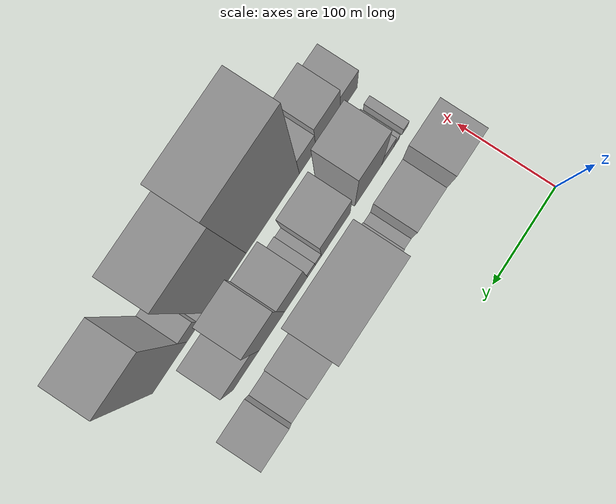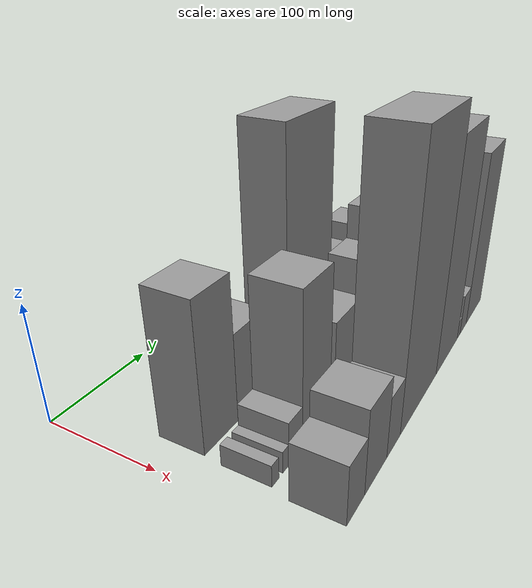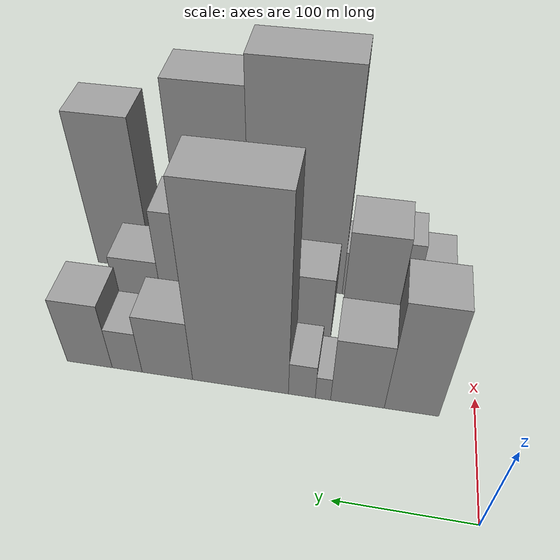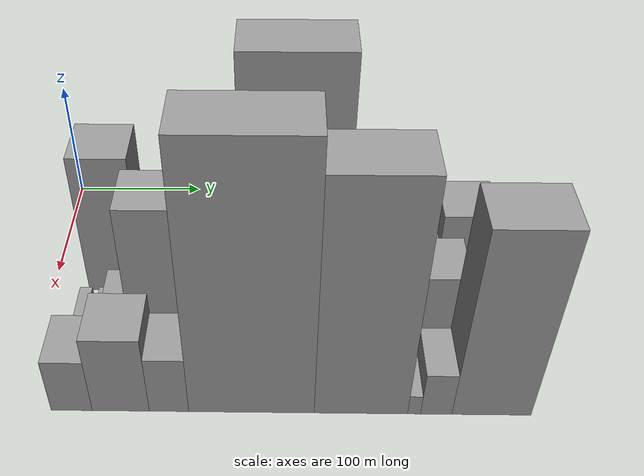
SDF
<sdf version="1.6">
 <world name="default">
  <model name="building_17">
   <static>1</static>
   <pose>100.0000 47.7928 0 0.000000 0.000000 0.000000</pose>
   <link name="link">
    <pose>0 0 61.50 0 0 0</pose>
    <collision name="collision"><geometry><box><size>40.0000 40.9139 123.0000</size></box></geometry></collision>
    <visual name="visual">
     <cast_shadows>0</cast_shadows>
     <geometry><box><size>40.0000 40.9139 123.0000</size></box></geometry>
     <material>
      <script>
       <uri>model://grey_wall/materials/scripts</uri>
       <uri>model://grey_wall/materials/textures</uri>
       <name>vrc/grey_wall</name>
      </script>
     </material>
    </visual>
   </link>
  </model>
  <model name="building_18">
   <static>1</static>
   <pose>100.0000 88.7634 0 0.000000 0.000000 0.000000</pose>
   <link name="link">
    <pose>0 0 37.50 0 0 0</pose>
    <collision name="collision"><geometry><box><size>40.0000 41.0273 75.0000</size></box></geometry></collision>
    <visual name="visual">
     <cast_shadows>0</cast_shadows>
     <geometry><box><size>40.0000 41.0273 75.0000</size></box></geometry>
     <material>
      <script>
       <uri>model://grey_wall/materials/scripts</uri>
       <uri>model://grey_wall/materials/textures</uri>
       <name>vrc/grey_wall</name>
      </script>
     </material>
    </visual>
   </link>
  </model>
  <model name="building_19">
   <static>1</static>
   <pose>100.0000 115.1914 0 0.000000 0.000000 0.000000</pose>
   <link name="link">
    <pose>0 0 13.50 0 0 0</pose>
    <collision name="collision"><geometry><box><size>40.0000 11.8286 27.0000</size></box></geometry></collision>
    <visual name="visual">
     <cast_shadows>0</cast_shadows>
     <geometry><box><size>40.0000 11.8286 27.0000</size></box></geometry>
     <material>
      <script>
       <uri>model://grey_wall/materials/scripts</uri>
       <uri>model://grey_wall/materials/textures</uri>
       <name>vrc/grey_wall</name>
      </script>
     </material>
    </visual>
   </link>
  </model>
  <model name="building_20">
   <static>1</static>
   <pose>100.0000 131.5545 0 0.000000 0.000000 0.000000</pose>
   <link name="link">
    <pose>0 0 19.50 0 0 0</pose>
    <collision name="collision"><geometry><box><size>40.0000 20.8976 39.0000</size></box></geometry></collision>
    <visual name="visual">
     <cast_shadows>0</cast_shadows>
     <geometry><box><size>40.0000 20.8976 39.0000</size></box></geometry>
     <material>
      <script>
       <uri>model://grey_wall/materials/scripts</uri>
       <uri>model://grey_wall/materials/textures</uri>
       <name>vrc/grey_wall</name>
      </script>
     </material>
    </visual>
   </link>
  </model>
  <model name="building_21">
   <static>1</static>
   <pose>100.0000 180.0972 0 0.000000 0.000000 0.000000</pose>
   <link name="link">
    <pose>0 0 102.00 0 0 0</pose>
    <collision name="collision"><geometry><box><size>40.0000 76.1879 204.0000</size></box></geometry></collision>
    <visual name="visual">
     <cast_shadows>0</cast_shadows>
     <geometry><box><size>40.0000 76.1879 204.0000</size></box></geometry>
     <material>
      <script>
       <uri>model://grey_wall/materials/scripts</uri>
       <uri>model://grey_wall/materials/textures</uri>
       <name>vrc/grey_wall</name>
      </script>
     </material>
    </visual>
   </link>
  </model>
  <model name="building_22">
   <static>1</static>
   <pose>100.0000 238.7869 0 0.000000 0.000000 0.000000</pose>
   <link name="link">
    <pose>0 0 34.50 0 0 0</pose>
    <collision name="collision"><geometry><box><size>40.0000 41.1914 69.0000</size></box></geometry></collision>
    <visual name="visual">
     <cast_shadows>0</cast_shadows>
     <geometry><box><size>40.0000 41.1914 69.0000</size></box></geometry>
     <material>
      <script>
       <uri>model://grey_wall/materials/scripts</uri>
       <uri>model://grey_wall/materials/textures</uri>
       <name>vrc/grey_wall</name>
      </script>
     </material>
    </visual>
   </link>
  </model>
  <model name="building_23">
   <static>1</static>
   <pose>100.0000 271.7643 0 0.000000 0.000000 0.000000</pose>
   <link name="link">
    <pose>0 0 24.00 0 0 0</pose>
    <collision name="collision"><geometry><box><size>40.0000 24.7636 48.0000</size></box></geometry></collision>
    <visual name="visual">
     <cast_shadows>0</cast_shadows>
     <geometry><box><size>40.0000 24.7636 48.0000</size></box></geometry>
     <material>
      <script>
       <uri>model://grey_wall/materials/scripts</uri>
       <uri>model://grey_wall/materials/textures</uri>
       <name>vrc/grey_wall</name>
      </script>
     </material>
    </visual>
   </link>
  </model>
  <model name="building_24">
   <static>1</static>
   <pose>100.0000 303.0075 0 0.000000 0.000000 0.000000</pose>
   <link name="link">
    <pose>0 0 37.50 0 0 0</pose>
    <collision name="collision"><geometry><box><size>40.0000 37.7227 75.0000</size></box></geometry></collision>
    <visual name="visual">
     <cast_shadows>0</cast_shadows>
     <geometry><box><size>40.0000 37.7227 75.0000</size></box></geometry>
     <material>
      <script>
       <uri>model://grey_wall/materials/scripts</uri>
       <uri>model://grey_wall/materials/textures</uri>
       <name>vrc/grey_wall</name>
      </script>
     </material>
    </visual>
   </link>
  </model>
  <model name="building_54">
   <static>1</static>
   <pose>155.0000 30.0182 0 0.000000 0.000000 0.000000</pose>
   <link name="link">
    <pose>0 0 9.00 0 0 0</pose>
    <collision name="collision"><geometry><box><size>40.0000 8.9610 18.0000</size></box></geometry></collision>
    <visual name="visual">
     <cast_shadows>0</cast_shadows>
     <geometry><box><size>40.0000 8.9610 18.0000</size></box></geometry>
     <material>
      <script>
       <uri>model://grey_wall/materials/scripts</uri>
       <uri>model://grey_wall/materials/textures</uri>
       <name>vrc/grey_wall</name>
      </script>
     </material>
    </visual>
   </link>
  </model>
  <model name="building_55">
   <static>1</static>
   <pose>155.0000 43.6101 0 0.000000 0.000000 0.000000</pose>
   <link name="link">
    <pose>0 0 9.00 0 0 0</pose>
    <collision name="collision"><geometry><box><size>40.0000 8.2228 18.0000</size></box></geometry></collision>
    <visual name="visual">
     <cast_shadows>0</cast_shadows>
     <geometry><box><size>40.0000 8.2228 18.0000</size></box></geometry>
     <material>
      <script>
       <uri>model://grey_wall/materials/scripts</uri>
       <uri>model://grey_wall/materials/textures</uri>
       <name>vrc/grey_wall</name>
      </script>
     </material>
    </visual>
   </link>
  </model>
  <model name="building_56">
   <static>1</static>
   <pose>155.0000 57.2296 0 0.000000 0.000000 0.000000</pose>
   <link name="link">
    <pose>0 0 18.00 0 0 0</pose>
    <collision name="collision"><geometry><box><size>40.0000 19.0161 36.0000</size></box></geometry></collision>
    <visual name="visual">
     <cast_shadows>0</cast_shadows>
     <geometry><box><size>40.0000 19.0161 36.0000</size></box></geometry>
     <material>
      <script>
       <uri>model://grey_wall/materials/scripts</uri>
       <uri>model://grey_wall/materials/textures</uri>
       <name>vrc/grey_wall</name>
      </script>
     </material>
    </visual>
   </link>
  </model>
  <model name="building_57">
   <static>1</static>
   <pose>155.0000 87.8246 0 0.000000 0.000000 0.000000</pose>
   <link name="link">
    <pose>0 0 63.00 0 0 0</pose>
    <collision name="collision"><geometry><box><size>40.0000 42.1740 126.0000</size></box></geometry></collision>
    <visual name="visual">
     <cast_shadows>0</cast_shadows>
     <geometry><box><size>40.0000 42.1740 126.0000</size></box></geometry>
     <material>
      <script>
       <uri>model://grey_wall/materials/scripts</uri>
       <uri>model://grey_wall/materials/textures</uri>
       <name>vrc/grey_wall</name>
      </script>
     </material>
    </visual>
   </link>
  </model>
  <model name="building_58">
   <static>1</static>
   <pose>155.0000 138.0495 0 0.000000 0.000000 0.000000</pose>
   <link name="link">
    <pose>0 0 37.50 0 0 0</pose>
    <collision name="collision"><geometry><box><size>40.0000 44.2757 75.0000</size></box></geometry></collision>
    <visual name="visual">
     <cast_shadows>0</cast_shadows>
     <geometry><box><size>40.0000 44.2757 75.0000</size></box></geometry>
     <material>
      <script>
       <uri>model://grey_wall/materials/scripts</uri>
       <uri>model://grey_wall/materials/textures</uri>
       <name>vrc/grey_wall</name>
      </script>
     </material>
    </visual>
   </link>
  </model>
  <model name="building_59">
   <static>1</static>
   <pose>155.0000 164.9444 0 0.000000 0.000000 0.000000</pose>
   <link name="link">
    <pose>0 0 10.50 0 0 0</pose>
    <collision name="collision"><geometry><box><size>40.0000 9.5140 21.0000</size></box></geometry></collision>
    <visual name="visual">
     <cast_shadows>0</cast_shadows>
     <geometry><box><size>40.0000 9.5140 21.0000</size></box></geometry>
     <material>
      <script>
       <uri>model://grey_wall/materials/scripts</uri>
       <uri>model://grey_wall/materials/textures</uri>
       <name>vrc/grey_wall</name>
      </script>
     </material>
    </visual>
   </link>
  </model>
  <model name="building_60">
   <static>1</static>
   <pose>155.0000 175.7145 0 0.000000 0.000000 0.000000</pose>
   <link name="link">
    <pose>0 0 13.50 0 0 0</pose>
    <collision name="collision"><geometry><box><size>40.0000 12.0264 27.0000</size></box></geometry></collision>
    <visual name="visual">
     <cast_shadows>0</cast_shadows>
     <geometry><box><size>40.0000 12.0264 27.0000</size></box></geometry>
     <material>
      <script>
       <uri>model://grey_wall/materials/scripts</uri>
       <uri>model://grey_wall/materials/textures</uri>
       <name>vrc/grey_wall</name>
      </script>
     </material>
    </visual>
   </link>
  </model>
  <model name="building_61">
   <static>1</static>
   <pose>155.0000 199.2698 0 0.000000 0.000000 0.000000</pose>
   <link name="link">
    <pose>0 0 46.50 0 0 0</pose>
    <collision name="collision"><geometry><box><size>40.0000 35.0842 93.0000</size></box></geometry></collision>
    <visual name="visual">
     <cast_shadows>0</cast_shadows>
     <geometry><box><size>40.0000 35.0842 93.0000</size></box></geometry>
     <material>
      <script>
       <uri>model://grey_wall/materials/scripts</uri>
       <uri>model://grey_wall/materials/textures</uri>
       <name>vrc/grey_wall</name>
      </script>
     </material>
    </visual>
   </link>
  </model>
  <model name="building_62">
   <static>1</static>
   <pose>155.0000 236.4280 0 0.000000 0.000000 0.000000</pose>
   <link name="link">
    <pose>0 0 61.50 0 0 0</pose>
    <collision name="collision"><geometry><box><size>40.0000 39.2322 123.0000</size></box></geometry></collision>
    <visual name="visual">
     <cast_shadows>0</cast_shadows>
     <geometry><box><size>40.0000 39.2322 123.0000</size></box></geometry>
     <material>
      <script>
       <uri>model://grey_wall/materials/scripts</uri>
       <uri>model://grey_wall/materials/textures</uri>
       <name>vrc/grey_wall</name>
      </script>
     </material>
    </visual>
   </link>
  </model>
  <model name="building_63">
   <static>1</static>
   <pose>155.0000 275.9085 0 0.000000 0.000000 0.000000</pose>
   <link name="link">
    <pose>0 0 34.50 0 0 0</pose>
    <collision name="collision"><geometry><box><size>40.0000 39.7288 69.0000</size></box></geometry></collision>
    <visual name="visual">
     <cast_shadows>0</cast_shadows>
     <geometry><box><size>40.0000 39.7288 69.0000</size></box></geometry>
     <material>
      <script>
       <uri>model://grey_wall/materials/scripts</uri>
       <uri>model://grey_wall/materials/textures</uri>
       <name>vrc/grey_wall</name>
      </script>
     </material>
    </visual>
   </link>
  </model>
  <model name="building_89">
   <static>1</static>
   <pose>210.0000 34.6594 0 0.000000 0.000000 0.000000</pose>
   <link name="link">
    <pose>0 0 24.00 0 0 0</pose>
    <collision name="collision"><geometry><box><size>40.0000 26.9854 48.0000</size></box></geometry></collision>
    <visual name="visual">
     <cast_shadows>0</cast_shadows>
     <geometry><box><size>40.0000 26.9854 48.0000</size></box></geometry>
     <material>
      <script>
       <uri>model://grey_wall/materials/scripts</uri>
       <uri>model://grey_wall/materials/textures</uri>
       <name>vrc/grey_wall</name>
      </script>
     </material>
    </visual>
   </link>
  </model>
  <model name="building_90">
   <static>1</static>
   <pose>210.0000 66.8832 0 0.000000 0.000000 0.000000</pose>
   <link name="link">
    <pose>0 0 34.50 0 0 0</pose>
    <collision name="collision"><geometry><box><size>40.0000 37.4624 69.0000</size></box></geometry></collision>
    <visual name="visual">
     <cast_shadows>0</cast_shadows>
     <geometry><box><size>40.0000 37.4624 69.0000</size></box></geometry>
     <material>
      <script>
       <uri>model://grey_wall/materials/scripts</uri>
       <uri>model://grey_wall/materials/textures</uri>
       <name>vrc/grey_wall</name>
      </script>
     </material>
    </visual>
   </link>
  </model>
  <model name="building_91">
   <static>1</static>
   <pose>210.0000 98.5190 0 0.000000 0.000000 0.000000</pose>
   <link name="link">
    <pose>0 0 25.50 0 0 0</pose>
    <collision name="collision"><geometry><box><size>40.0000 25.8091 51.0000</size></box></geometry></collision>
    <visual name="visual">
     <cast_shadows>0</cast_shadows>
     <geometry><box><size>40.0000 25.8091 51.0000</size></box></geometry>
     <material>
      <script>
       <uri>model://grey_wall/materials/scripts</uri>
       <uri>model://grey_wall/materials/textures</uri>
       <name>vrc/grey_wall</name>
      </script>
     </material>
    </visual>
   </link>
  </model>
  <model name="building_92">
   <static>1</static>
   <pose>210.0000 152.4693 0 0.000000 0.000000 0.000000</pose>
   <link name="link">
    <pose>0 0 111.00 0 0 0</pose>
    <collision name="collision"><geometry><box><size>40.0000 82.0914 222.0000</size></box></geometry></collision>
    <visual name="visual">
     <cast_shadows>0</cast_shadows>
     <geometry><box><size>40.0000 82.0914 222.0000</size></box></geometry>
     <material>
      <script>
       <uri>model://grey_wall/materials/scripts</uri>
       <uri>model://grey_wall/materials/textures</uri>
       <name>vrc/grey_wall</name>
      </script>
     </material>
    </visual>
   </link>
  </model>
  <model name="building_93">
   <static>1</static>
   <pose>210.0000 223.9887 0 0.000000 0.000000 0.000000</pose>
   <link name="link">
    <pose>0 0 99.00 0 0 0</pose>
    <collision name="collision"><geometry><box><size>40.0000 60.9475 198.0000</size></box></geometry></collision>
    <visual name="visual">
     <cast_shadows>0</cast_shadows>
     <geometry><box><size>40.0000 60.9475 198.0000</size></box></geometry>
     <material>
      <script>
       <uri>model://grey_wall/materials/scripts</uri>
       <uri>model://grey_wall/materials/textures</uri>
       <name>vrc/grey_wall</name>
      </script>
     </material>
    </visual>
   </link>
  </model>
  <model name="building_94">
   <static>1</static>
   <pose>210.0000 258.7062 0 0.000000 0.000000 0.000000</pose>
   <link name="link">
    <pose>0 0 9.00 0 0 0</pose>
    <collision name="collision"><geometry><box><size>40.0000 8.4874 18.0000</size></box></geometry></collision>
    <visual name="visual">
     <cast_shadows>0</cast_shadows>
     <geometry><box><size>40.0000 8.4874 18.0000</size></box></geometry>
     <material>
      <script>
       <uri>model://grey_wall/materials/scripts</uri>
       <uri>model://grey_wall/materials/textures</uri>
       <name>vrc/grey_wall</name>
      </script>
     </material>
    </visual>
   </link>
  </model>
  <model name="building_95">
   <static>1</static>
   <pose>210.0000 273.1592 0 0.000000 0.000000 0.000000</pose>
   <link name="link">
    <pose>0 0 19.50 0 0 0</pose>
    <collision name="collision"><geometry><box><size>40.0000 20.4185 39.0000</size></box></geometry></collision>
    <visual name="visual">
     <cast_shadows>0</cast_shadows>
     <geometry><box><size>40.0000 20.4185 39.0000</size></box></geometry>
     <material>
      <script>
       <uri>model://grey_wall/materials/scripts</uri>
       <uri>model://grey_wall/materials/textures</uri>
       <name>vrc/grey_wall</name>
      </script>
     </material>
    </visual>
   </link>
  </model>
  <model name="building_96">
   <static>1</static>
   <pose>210.0000 309.1661 0 0.000000 0.000000 0.000000</pose>
   <link name="link">
    <pose>0 0 81.00 0 0 0</pose>
    <collision name="collision"><geometry><box><size>40.0000 51.5953 162.0000</size></box></geometry></collision>
    <visual name="visual">
     <cast_shadows>0</cast_shadows>
     <geometry><box><size>40.0000 51.5953 162.0000</size></box></geometry>
     <material>
      <script>
       <uri>model://grey_wall/materials/scripts</uri>
       <uri>model://grey_wall/materials/textures</uri>
       <name>vrc/grey_wall</name>
      </script>
     </material>
    </visual>
   </link>
  </model>
 </world>
</sdf>
